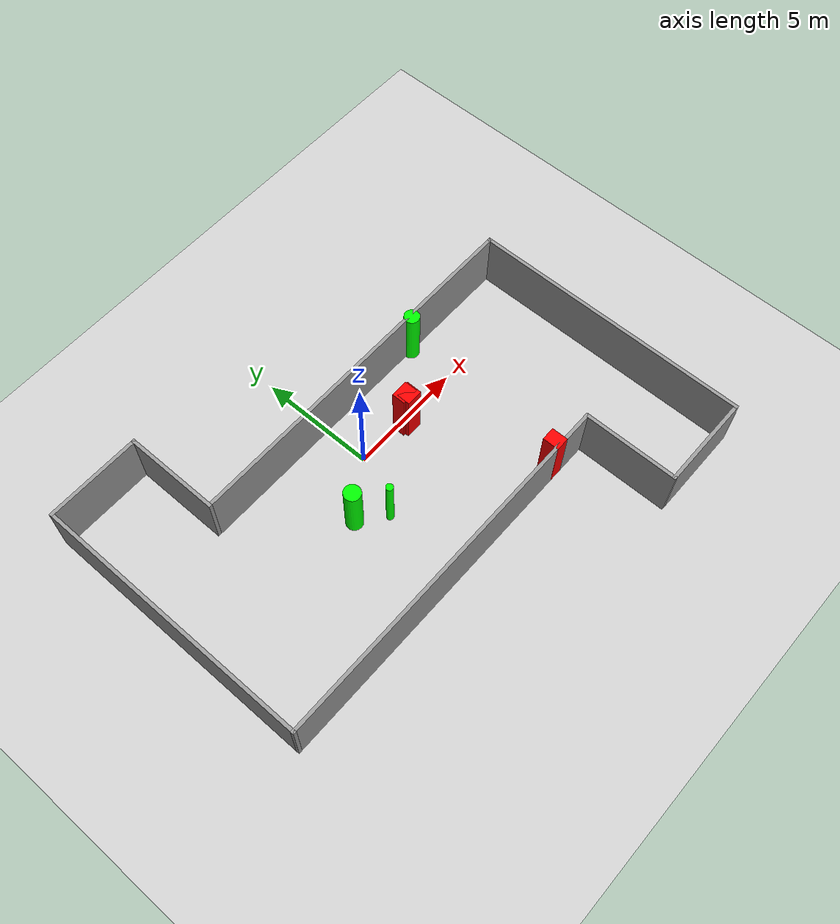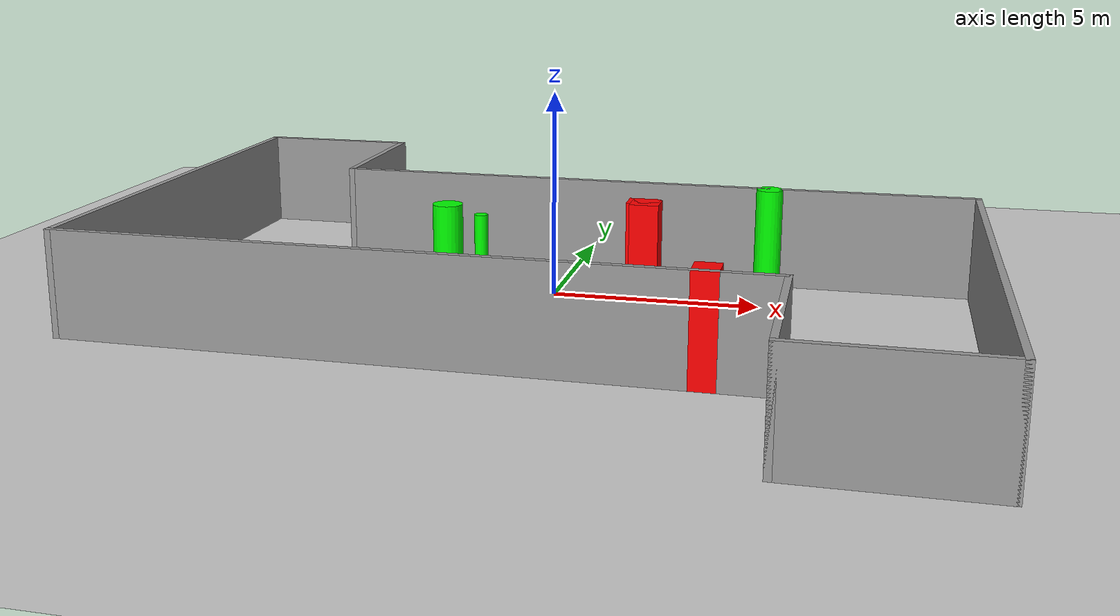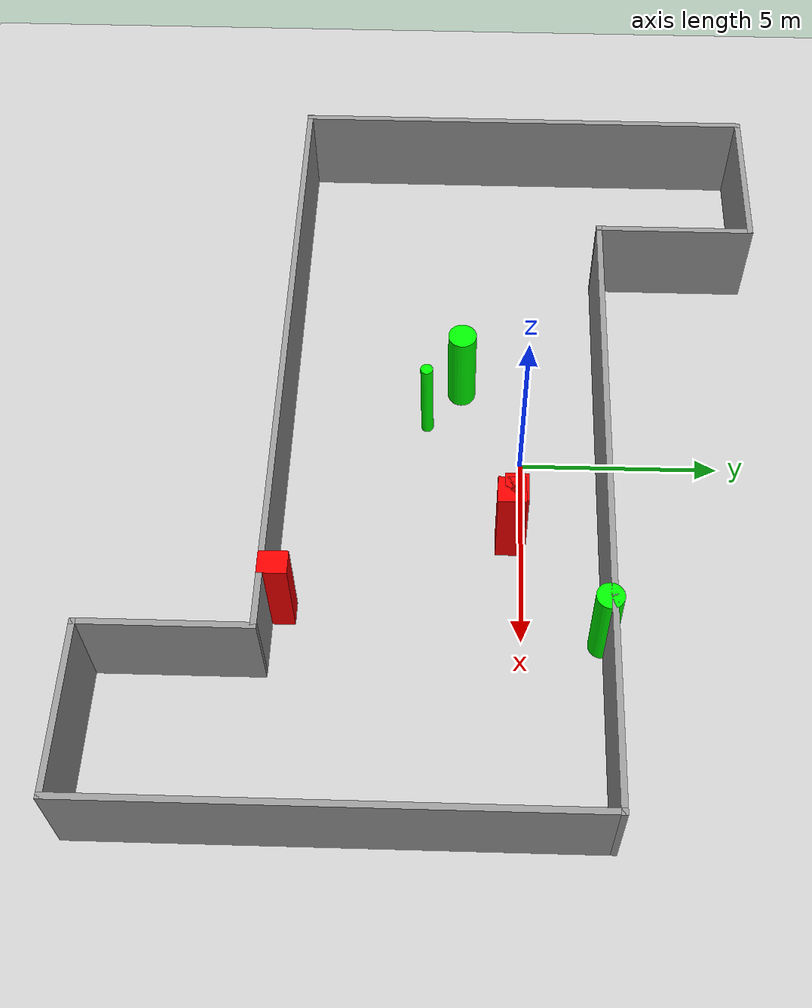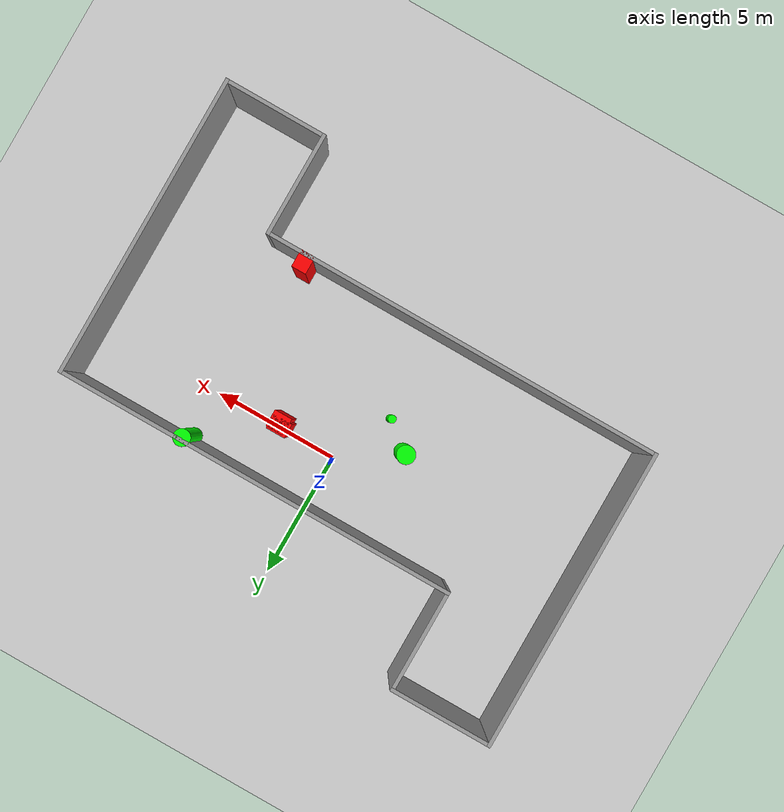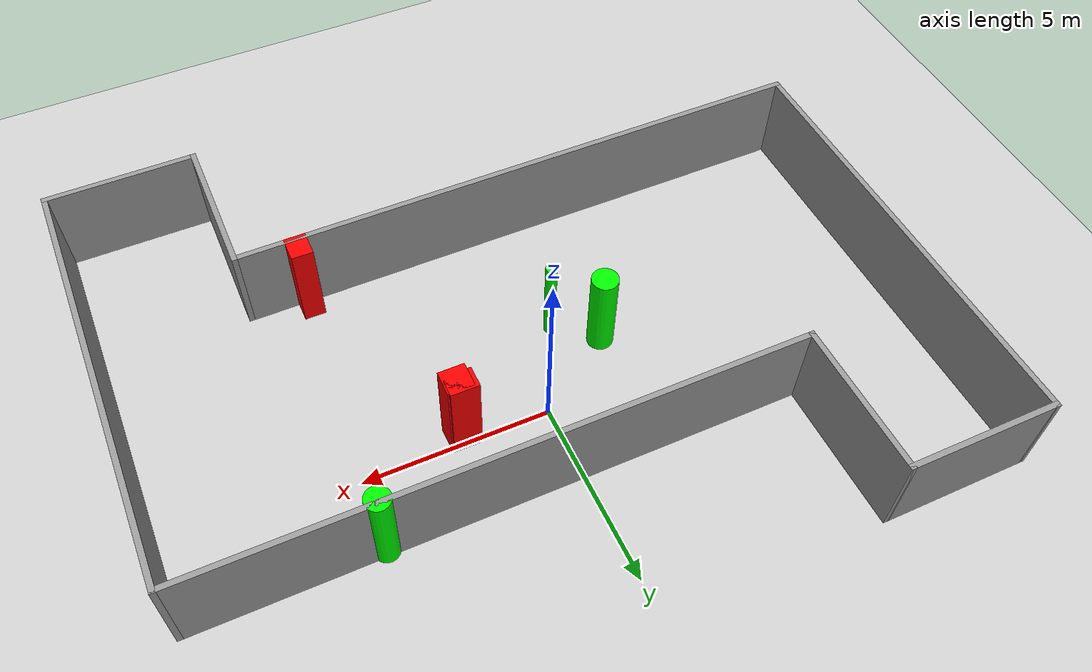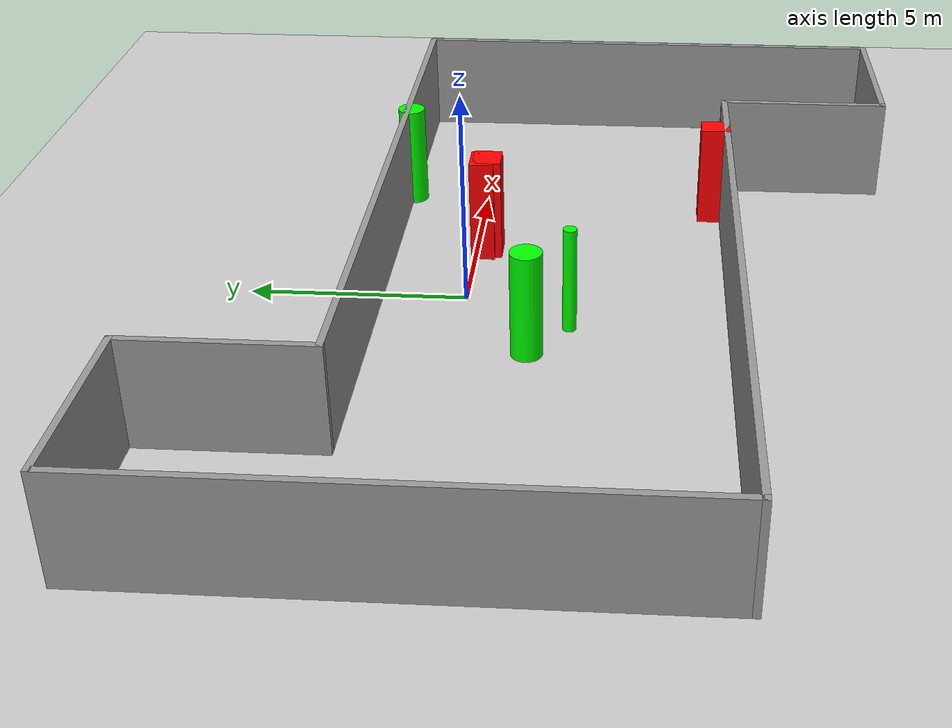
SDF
<sdf version="1.7">
 <world name="default">
  <light name="sun" type="directional">
   <pose>0 0 10 0 -0 0</pose>
   <diffuse>0.8 0.8 0.8 1</diffuse>
   <specular>0.2 0.2 0.2 1</specular>
   <attenuation>
    <range>1000</range>
    <constant>0.9</constant>
    <linear>0.01</linear>
    <quadratic>0.001</quadratic>
   </attenuation>
   <direction>-0.5 0.1 -0.9</direction>
   <spot><inner_angle>0</inner_angle><outer_angle>0</outer_angle><falloff>0</falloff></spot>
  </light>
  <model name="ground_plane">
   <static>1</static>
   <link name="link">
    <collision name="collision">
     <geometry><plane><normal>0 0 1</normal><size>100 100</size></plane></geometry>
     <surface>
      <contact><collide_bitmask>65535</collide_bitmask></contact>
      <friction><ode><mu>100</mu><mu2>50</mu2></ode></friction>
     </surface>
    </collision>
    <visual name="visual">
     <cast_shadows>0</cast_shadows>
     <geometry><plane><normal>0 0 1</normal><size>100 100</size></plane></geometry>
     <material>
      <script><uri>file://media/materials/scripts/gazebo.material</uri><name>Gazebo/Grey</name></script>
     </material>
    </visual>
   </link>
  </model>
  <gravity>0 0 -9.8</gravity>
  <magnetic_field>6e-06 2.3e-05 -4.2e-05</magnetic_field>
  <atmosphere type="adiabatic"/>
  <physics type="ode">
   <max_step_size>0.001</max_step_size>
   <real_time_factor>1</real_time_factor>
   <real_time_update_rate>1000</real_time_update_rate>
  </physics>
  <scene><ambient>0.4 0.4 0.4 1</ambient><background>0.7 0.7 0.7 1</background><shadows>1</shadows></scene>
  <spherical_coordinates>
   <surface_model>EARTH_WGS84</surface_model>
   <latitude_deg>0</latitude_deg>
   <longitude_deg>0</longitude_deg>
   <elevation>0</elevation>
   <heading_deg>0</heading_deg>
  </spherical_coordinates>
  <model name="my_base_walls">
   <link name="Wall_13">
    <collision name="Wall_13_Collision">
     <geometry><box><size>12.15 0.15 2.5</size></box></geometry>
     <pose>0 0 1.25 0 -0 0</pose>
    </collision>
    <visual name="Wall_13_Visual">
     <pose>0 0 1.25 0 -0 0</pose>
     <geometry><box><size>12.15 0.15 2.5</size></box></geometry>
     <material>
      <script><uri>file://media/materials/scripts/gazebo.material</uri><name>Gazebo/Grey</name></script>
      <ambient>1 1 1 1</ambient>
     </material>
     <meta><layer>0</layer></meta>
    </visual>
    <pose>10 -2 0 0 -0 1.5708</pose>
   </link>
   <link name="Wall_15">
    <collision name="Wall_15_Collision">
     <geometry><box><size>16.15 0.15 2.5</size></box></geometry>
     <pose>0 0 1.25 0 -0 0</pose>
    </collision>
    <visual name="Wall_15_Visual">
     <pose>0 0 1.25 0 -0 0</pose>
     <geometry><box><size>16.15 0.15 2.5</size></box></geometry>
     <material>
      <script><uri>file://media/materials/scripts/gazebo.material</uri><name>Gazebo/Grey</name></script>
      <ambient>1 1 1 1</ambient>
     </material>
     <meta><layer>0</layer></meta>
    </visual>
    <pose>2 4 0 0 -0 3.14159</pose>
   </link>
   <link name="Wall_17">
    <collision name="Wall_17_Collision">
     <geometry><box><size>4.15 0.15 2.5</size></box></geometry>
     <pose>0 0 1.25 0 -0 0</pose>
    </collision>
    <visual name="Wall_17_Visual">
     <pose>0 0 1.25 0 -0 0</pose>
     <geometry><box><size>4.15 0.15 2.5</size></box></geometry>
     <material>
      <script><uri>file://media/materials/scripts/gazebo.material</uri><name>Gazebo/Grey</name></script>
      <ambient>1 1 1 1</ambient>
     </material>
     <meta><layer>0</layer></meta>
    </visual>
    <pose>6 -6 0 0 -0 -1.5708</pose>
   </link>
   <link name="Wall_19">
    <collision name="Wall_19_Collision">
     <geometry><box><size>12.15 0.15 2.5</size></box></geometry>
     <pose>0 0 1.25 0 -0 0</pose>
    </collision>
    <visual name="Wall_19_Visual">
     <pose>0 0 1.25 0 -0 0</pose>
     <geometry><box><size>12.15 0.15 2.5</size></box></geometry>
     <material>
      <script><uri>file://media/materials/scripts/gazebo.material</uri><name>Gazebo/Grey</name></script>
      <ambient>1 1 1 1</ambient>
     </material>
     <meta><layer>0</layer></meta>
    </visual>
    <pose>-10 2 0 0 -0 1.5708</pose>
   </link>
   <link name="Wall_21">
    <collision name="Wall_21_Collision">
     <geometry><box><size>4.15 0.15 2.5</size></box></geometry>
     <pose>0 0 1.25 0 -0 0</pose>
    </collision>
    <visual name="Wall_21_Visual">
     <pose>0 0 1.25 0 -0 0</pose>
     <geometry><box><size>4.15 0.15 2.5</size></box></geometry>
     <material>
      <script><uri>file://media/materials/scripts/gazebo.material</uri><name>Gazebo/Grey</name></script>
      <ambient>1 1 1 1</ambient>
     </material>
     <meta><layer>0</layer></meta>
    </visual>
    <pose>-8 8 0 0 -0 0</pose>
   </link>
   <link name="Wall_23">
    <collision name="Wall_23_Collision">
     <geometry><box><size>4.15 0.15 2.5</size></box></geometry>
     <pose>0 0 1.25 0 -0 0</pose>
    </collision>
    <visual name="Wall_23_Visual">
     <pose>0 0 1.25 0 -0 0</pose>
     <geometry><box><size>4.15 0.15 2.5</size></box></geometry>
     <material>
      <script><uri>file://media/materials/scripts/gazebo.material</uri><name>Gazebo/Grey</name></script>
      <ambient>1 1 1 1</ambient>
     </material>
     <meta><layer>0</layer></meta>
    </visual>
    <pose>-6 6 0 0 -0 -1.5708</pose>
   </link>
   <link name="Wall_25">
    <collision name="Wall_25_Collision">
     <geometry><box><size>4.15 0.15 2.5</size></box></geometry>
     <pose>0 0 1.25 0 -0 0</pose>
    </collision>
    <visual name="Wall_25_Visual">
     <pose>0 0 1.25 0 -0 0</pose>
     <geometry><box><size>4.15 0.15 2.5</size></box></geometry>
     <material>
      <script><uri>file://media/materials/scripts/gazebo.material</uri><name>Gazebo/Grey</name></script>
      <ambient>1 1 1 1</ambient>
     </material>
     <meta><layer>0</layer></meta>
    </visual>
    <pose>8 -8 0 0 -0 0</pose>
   </link>
   <link name="Wall_9">
    <collision name="Wall_9_Collision">
     <geometry><box><size>16.15 0.15 2.5</size></box></geometry>
     <pose>0 0 1.25 0 -0 0</pose>
    </collision>
    <visual name="Wall_9_Visual">
     <pose>0 0 1.25 0 -0 0</pose>
     <geometry><box><size>16.15 0.15 2.5</size></box></geometry>
     <material>
      <script><uri>file://media/materials/scripts/gazebo.material</uri><name>Gazebo/Grey</name></script>
      <ambient>1 1 1 1</ambient>
     </material>
     <meta><layer>0</layer></meta>
    </visual>
    <pose>-2 -4 0 0 -0 3.14159</pose>
   </link>
   <static>1</static>
   <pose>-0 -2 0 0 -0 0</pose>
  </model>
  <model name="cylinder1">
   <static>1</static>
   <link name="link">
    <inertial>
     <mass>1</mass>
     <inertia><ixx>0.5</ixx><ixy>0</ixy><ixz>0</ixz><iyy>0.5</iyy><iyz>0</iyz><izz>1</izz></inertia>
    </inertial>
    <collision name="collision">
     <geometry><cylinder><radius>0.15435770808085203</radius><length>2.5</length></cylinder></geometry>
    </collision>
    <visual name="visual">
     <geometry><cylinder><radius>0.15435770808085203</radius><length>2.5</length></cylinder></geometry>
     <material>
      <ambient>0 1 0 1</ambient>
      <diffuse>0 1 0 1</diffuse>
      <specular>0.1 0.1 0.1 1</specular>
      <emissive>0 0 0 0</emissive>
     </material>
    </visual>
   </link>
   <pose>-1.1693444698495696 -2.4192405438724878 1.25 0 0 0</pose>
  </model>
  <model name="cylinder2">
   <static>1</static>
   <link name="link">
    <inertial>
     <mass>1</mass>
     <inertia><ixx>0.5</ixx><ixy>0</ixy><ixz>0</ixz><iyy>0.5</iyy><iyz>0</iyz><izz>1</izz></inertia>
    </inertial>
    <collision name="collision">
     <geometry><cylinder><radius>0.328903118143384</radius><length>2.5</length></cylinder></geometry>
    </collision>
    <visual name="visual">
     <geometry><cylinder><radius>0.328903118143384</radius><length>2.5</length></cylinder></geometry>
     <material>
      <ambient>0 1 0 1</ambient>
      <diffuse>0 1 0 1</diffuse>
      <specular>0.1 0.1 0.1 1</specular>
      <emissive>0 0 0 0</emissive>
     </material>
    </visual>
   </link>
   <pose>5.043725349401221 1.9055337015241367 1.25 0 0 0</pose>
  </model>
  <model name="cylinder3">
   <static>1</static>
   <link name="link">
    <inertial>
     <mass>1</mass>
     <inertia><ixx>0.5</ixx><ixy>0</ixy><ixz>0</ixz><iyy>0.5</iyy><iyz>0</iyz><izz>1</izz></inertia>
    </inertial>
    <collision name="collision">
     <geometry><cylinder><radius>0.35534794848726203</radius><length>2.5</length></cylinder></geometry>
    </collision>
    <visual name="visual">
     <geometry><cylinder><radius>0.35534794848726203</radius><length>2.5</length></cylinder></geometry>
     <material>
      <ambient>0 1 0 1</ambient>
      <diffuse>0 1 0 1</diffuse>
      <specular>0.1 0.1 0.1 1</specular>
      <emissive>0 0 0 0</emissive>
     </material>
    </visual>
   </link>
   <pose>-2.238827183816627 -1.5519178599864167 1.25 0 0 0</pose>
  </model>
  <model name="box1">
   <static>1</static>
   <link name="link">
    <inertial>
     <mass>1</mass>
     <inertia><ixx>0.083</ixx><ixy>0</ixy><ixz>0</ixz><iyy>0.083</iyy><iyz>0</iyz><izz>0.083</izz></inertia>
    </inertial>
    <collision name="collision">
     <geometry><box><size>0.6942935021087494 0.670062705200219 2.5</size></box></geometry>
    </collision>
    <visual name="visual">
     <geometry><box><size>0.6942935021087494 0.670062705200219 2.5</size></box></geometry>
     <material>
      <ambient>1 0 0 1</ambient>
      <diffuse>1 0 0 1</diffuse>
      <specular>0.1 0.1 0.1 1</specular>
      <emissive>0 0 0 0</emissive>
     </material>
    </visual>
    <sensor name="my_contact" type="contact">
     <contact><collision>box_collision</collision><topic>__default_topic__</topic></contact>
    </sensor>
   </link>
   <pose>2.293408427337056 -0.2940501022604449 1.25 0 0 0</pose>
  </model>
  <model name="box2">
   <static>1</static>
   <link name="link">
    <inertial>
     <mass>1</mass>
     <inertia><ixx>0.083</ixx><ixy>0</ixy><ixz>0</ixz><iyy>0.083</iyy><iyz>0</iyz><izz>0.083</izz></inertia>
    </inertial>
    <collision name="collision">
     <geometry><box><size>0.7529176524455057 0.5662358473538844 2.5</size></box></geometry>
    </collision>
    <visual name="visual">
     <geometry><box><size>0.7529176524455057 0.5662358473538844 2.5</size></box></geometry>
     <material>
      <ambient>1 0 0 1</ambient>
      <diffuse>1 0 0 1</diffuse>
      <specular>0.1 0.1 0.1 1</specular>
      <emissive>0 0 0 0</emissive>
     </material>
    </visual>
    <sensor name="my_contact" type="contact">
     <contact><collision>box_collision</collision><topic>__default_topic__</topic></contact>
    </sensor>
   </link>
   <pose>2.221804939599256 -0.18079753240929008 1.25 0 0 0</pose>
  </model>
  <model name="box3">
   <static>1</static>
   <link name="link">
    <inertial>
     <mass>1</mass>
     <inertia><ixx>0.083</ixx><ixy>0</ixy><ixz>0</ixz><iyy>0.083</iyy><iyz>0</iyz><izz>0.083</izz></inertia>
    </inertial>
    <collision name="collision">
     <geometry><box><size>0.580673062789121 0.7026001885858658 2.5</size></box></geometry>
    </collision>
    <visual name="visual">
     <geometry><box><size>0.580673062789121 0.7026001885858658 2.5</size></box></geometry>
     <material>
      <ambient>1 0 0 1</ambient>
      <diffuse>1 0 0 1</diffuse>
      <specular>0.1 0.1 0.1 1</specular>
      <emissive>0 0 0 0</emissive>
     </material>
    </visual>
    <sensor name="my_contact" type="contact">
     <contact><collision>box_collision</collision><topic>__default_topic__</topic></contact>
    </sensor>
   </link>
   <pose>4.395179004774999 -5.72567972916956 1.25 0 0 0</pose>
  </model>
 </world>
</sdf>
